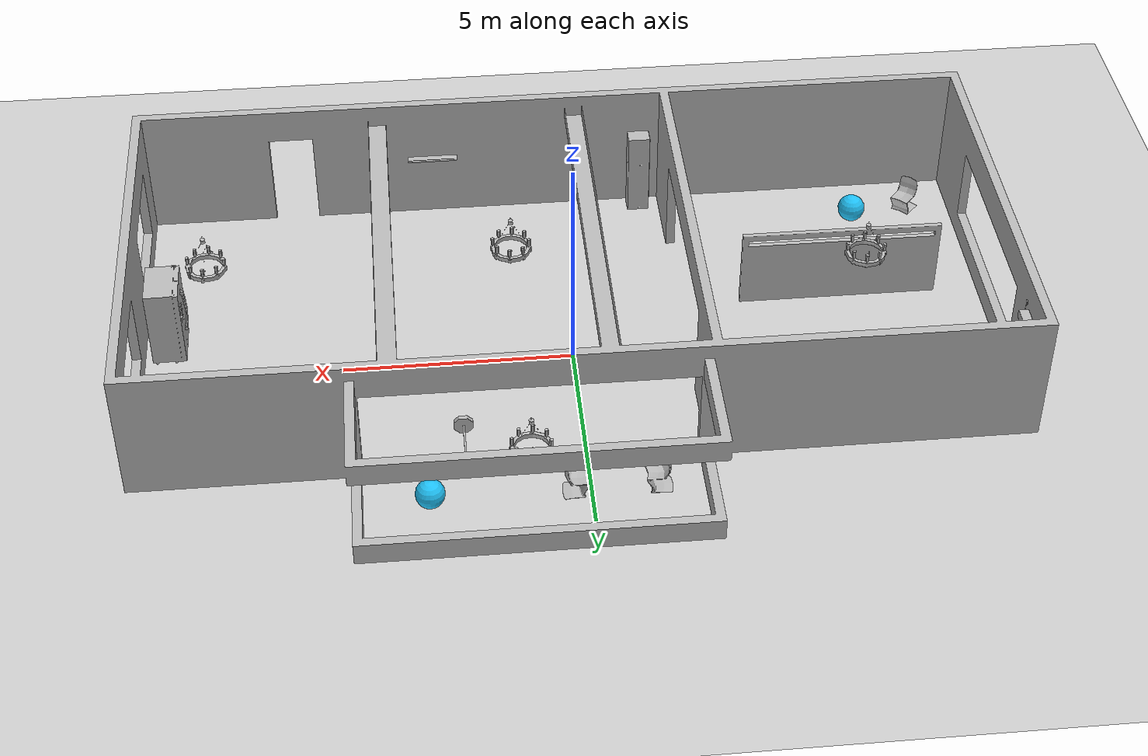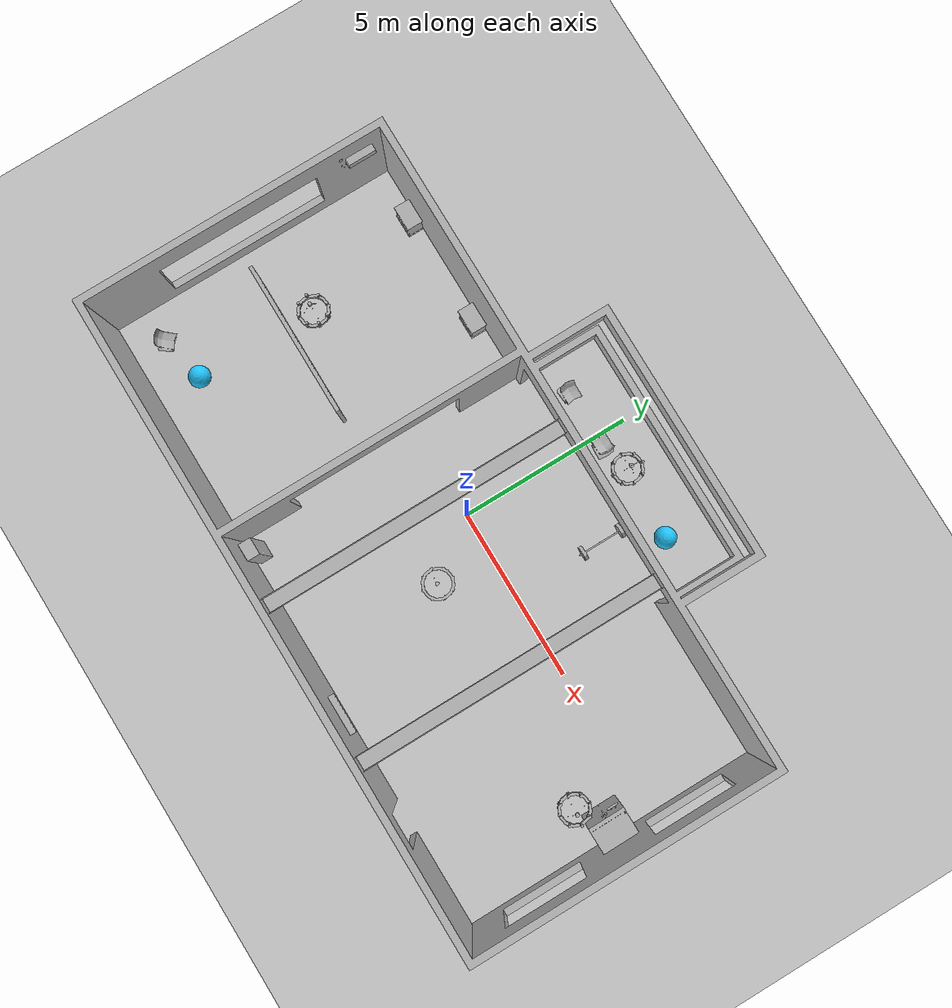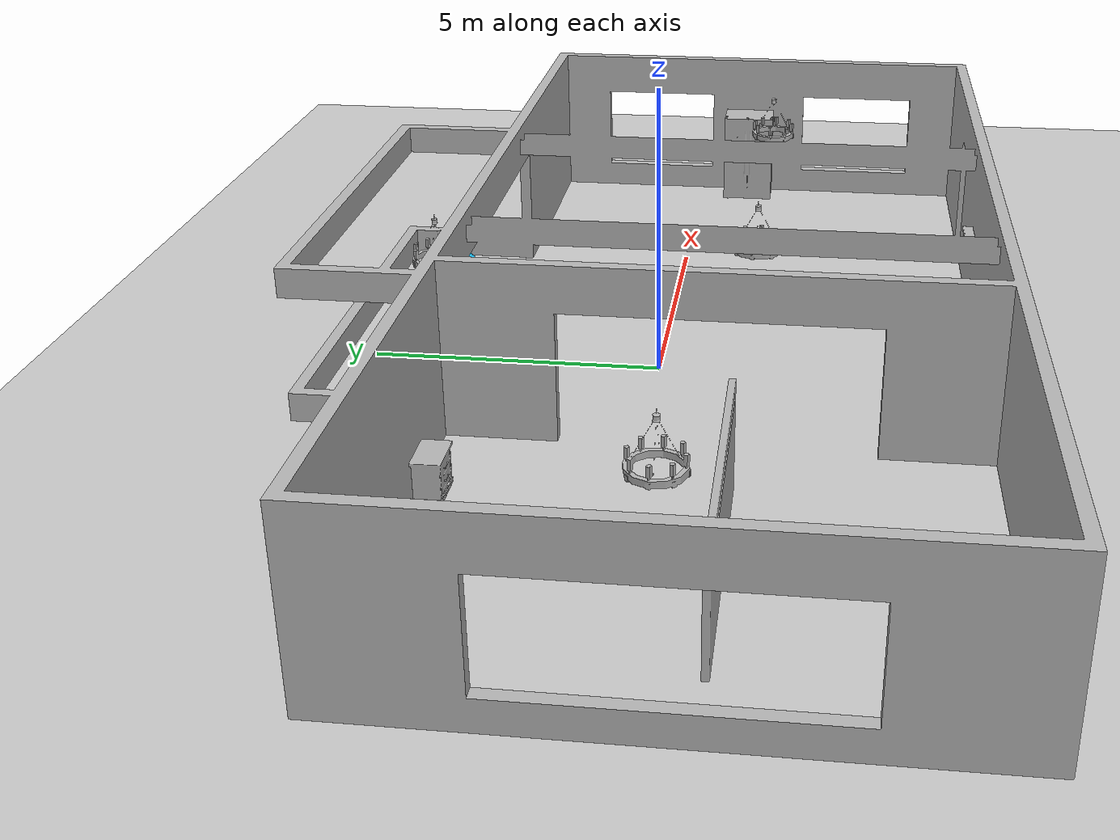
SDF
<sdf version="1.6">
 <world name="default">
  <gravity>0 0 -9.8</gravity>
  <magnetic_field>6e-06 2.3e-05 -4.2e-05</magnetic_field>
  <atmosphere type="adiabatic"/>
  <physics name="default_physics" default="0" type="ode">
   <max_step_size>0.001</max_step_size>
   <real_time_factor>1</real_time_factor>
   <real_time_update_rate>1000</real_time_update_rate>
  </physics>
  <scene>
   <ambient>0.4 0.4 0.4 1</ambient>
   <background>0.7 0.7 0.7 1</background>
   <shadows>false</shadows>
   <grid>false</grid>
   <origin_visual>false</origin_visual>
  </scene>
  <spherical_coordinates>
   <surface_model>EARTH_WGS84</surface_model>
   <latitude_deg>0</latitude_deg>
   <longitude_deg>0</longitude_deg>
   <elevation>0</elevation>
   <heading_deg>0</heading_deg>
  </spherical_coordinates>
  <include><uri>model://ground_plane</uri></include>
  <model name="AirconditionerA_01_001">
   <static>true</static>
   <include><uri>model://aws_robomaker_residential_AirconditionerA_01</uri></include>
   <pose>-9.199410 2.411230 2.084544 0 -0 0</pose>
  </model>
  <model name="AirconditionerB_01_001">
   <static>true</static>
   <include><uri>model://aws_robomaker_residential_AirconditionerB_01</uri></include>
   <pose>-2.004656 -5.226610 0.003485 0 -0 0</pose>
  </model>
  <model name="Ball_01_001">
   <static>true</static>
   <include><uri>model://aws_robomaker_residential_Ball_01</uri></include>
   <pose>3.295503 4.225674 0.318684 0 -0 0</pose>
  </model>
  <model name="Ball_01_003">
   <static>true</static>
   <include><uri>model://aws_robomaker_residential_Ball_01</uri></include>
   <pose>-6.945503 -4.22174 0.318684 0 -0 0</pose>
  </model>
  <model name="NightStand_01_001">
   <static>true</static>
   <include><uri>model://aws_robomaker_residential_NightStand_01</uri></include>
   <pose>-7.725510 2.860420 0.005258 -0.000002 0 0</pose>
  </model>
  <model name="NightStand_01_002">
   <static>true</static>
   <include><uri>model://aws_robomaker_residential_NightStand_01</uri></include>
   <pose>-4.407341 2.860420 0.005256 0 0.000002 0</pose>
  </model>
  <model name="Board_01_001">
   <static>true</static>
   <include><uri>model://aws_robomaker_residential_Board_01</uri></include>
   <pose>2.779073 -5.392703 1.538173 0 -0 0</pose>
  </model>
  <model name="ChairD_01_001">
   <static>true</static>
   <include><uri>model://aws_robomaker_residential_ChairD_01</uri></include>
   <pose>-1.380775 4.104456 0 0 -0 0</pose>
  </model>
  <model name="ChairD_01_002">
   <static>true</static>
   <include><uri>model://aws_robomaker_residential_ChairD_01</uri></include>
   <pose>0.325214 4.104456 0 0 -0 -3.138741</pose>
  </model>
  <model name="ChairD_01_003">
   <static>true</static>
   <include><uri>model://aws_robomaker_residential_ChairD_01</uri></include>
   <pose>-8.270775 -4.504456 0 0 -0 0.869673</pose>
  </model>
  <model name="Chandelier_01_001">
   <static>true</static>
   <include><uri>model://aws_robomaker_residential_Chandelier_01</uri></include>
   <pose>1.221061 4.155740 1.295000 0 -0 0</pose>
  </model>
  <model name="Chandelier_01_002">
   <static>true</static>
   <include><uri>model://aws_robomaker_residential_Chandelier_01</uri></include>
   <pose>-6.451061 -0.692040 1.810000 0 -0 0</pose>
  </model>
  <model name="Chandelier_01_003">
   <static>true</static>
   <include><uri>model://aws_robomaker_residential_Chandelier_01</uri></include>
   <pose>7.824061 -1.59 1.7510000 0 -0 0</pose>
  </model>
  <model name="Chandelier_01_004">
   <static>true</static>
   <include><uri>model://aws_robomaker_residential_Chandelier_01</uri></include>
   <pose>1.221061 -1.592040 1.7873000 0 -0 0</pose>
  </model>
  <model name="Dumbbell_01_001">
   <static>true</static>
   <include><uri>model://aws_robomaker_residential_Dumbbell_01</uri></include>
   <pose>2.512849 2.717787 0.002183 0 -0 0</pose>
  </model>
  <model name="HouseWallB_01_001">
   <static>true</static>
   <include><uri>model://aws_robomaker_residential_HouseWallB_01</uri></include>
  </model>
  <model name="Refrigerator_01_001">
   <static>true</static>
   <include><uri>model://aws_robomaker_residential_Refrigerator_01</uri></include>
   <pose>8.702731 -1.032031 0 0 -0 -1.563499</pose>
  </model>
  <model name="RoomWall_01_001">
   <static>true</static>
   <include><uri>model://aws_robomaker_residential_RoomWall_01</uri></include>
   <pose>-6.097550 -1.496180 0.028124 0 -0 0</pose>
  </model>
  <light name="LivingRoom_CeilingLight_0" type="point">
   <pose>1.194296 4.155759 2.2 0 -0 0</pose>
   <diffuse>0.5 0.5 0.5 1</diffuse>
   <specular>0.1 0.1 0.1 1</specular>
   <attenuation>
    <range>20</range>
    <constant>0.32</constant>
    <linear>0.01</linear>
    <quadratic>0.03</quadratic>
   </attenuation>
   <cast_shadows>0</cast_shadows>
   <direction>0 0 -1</direction>
  </light>
  <light name="LivingRoom_CeilingLight_1" type="point">
   <pose>1.194296 -1.589959 2.2 0 -0 0</pose>
   <diffuse>0.5 0.5 0.5 1</diffuse>
   <specular>0.1 0.1 0.1 1</specular>
   <attenuation>
    <range>20</range>
    <constant>0.05</constant>
    <linear>0.01</linear>
    <quadratic>0.09</quadratic>
   </attenuation>
   <cast_shadows>0</cast_shadows>
   <direction>0 0 -1</direction>
  </light>
  <light name="LivingRoom_WallLight_0" type="point">
   <pose>1.76956 -5.444370 2.2 0 -0 0</pose>
   <diffuse>0.24 0.24 0.24 1</diffuse>
   <specular>0.1 0.1 0.1 1</specular>
   <attenuation>
    <range>20</range>
    <constant>0.12</constant>
    <linear>0.00</linear>
    <quadratic>0.03</quadratic>
   </attenuation>
   <direction>0 0 -1</direction>
  </light>
  <light name="LivingRoom_WallLight_1" type="point">
   <pose>-0.13826 -5.444370 2.2 0 -0 0</pose>
   <diffuse>0.24 0.24 0.24 1</diffuse>
   <specular>0.1 0.1 0.1 1</specular>
   <attenuation>
    <range>20</range>
    <constant>0.12</constant>
    <linear>0.00</linear>
    <quadratic>0.03</quadratic>
   </attenuation>
   <direction>0 0 -1</direction>
  </light>
  <light name="TV_Light_0" type="point">
   <pose>0.8269 -4.939577 1.1 0 -0 0</pose>
   <diffuse>0.31372 0.31372 0.34901 1</diffuse>
   <specular>0.1 0.1 0.1 1</specular>
   <attenuation>
    <range>3</range>
    <constant>0.10</constant>
    <linear>0.04</linear>
    <quadratic>0.50</quadratic>
   </attenuation>
   <direction>0 0 -1</direction>
  </light>
  <light name="BedRoom_Portrait_Light_0" type="spot">
   <pose>-6.190379 -1.829697 1.5587 0.3 -0 0.0</pose>
   <diffuse>0.5 0.5 0.5 1</diffuse>
   <specular>0.1 0.1 0.1 1</specular>
   <attenuation>
    <range>20</range>
    <constant>0.50</constant>
    <linear>0.01</linear>
    <quadratic>0.00</quadratic>
   </attenuation>
   <spot><inner_angle>0.6</inner_angle><outer_angle>1.0</outer_angle><falloff>1.0</falloff></spot>
   <direction>0 0 -1</direction>
  </light>
  <light name="BedRoom_CeilingLight_0" type="point">
   <pose>-6.451061 -0.692040 2.000000 0 -0 0</pose>
   <diffuse>0.5 0.5 0.5 1</diffuse>
   <specular>0.1 0.1 0.1 1</specular>
   <attenuation>
    <range>20</range>
    <constant>0.32</constant>
    <linear>0.01</linear>
    <quadratic>0.03</quadratic>
   </attenuation>
   <cast_shadows>0</cast_shadows>
   <direction>0 0 -1</direction>
  </light>
  <light name="Kitchen_CeilingLight_0" type="point">
   <pose>7.8582 -1.5905 2.280000 0 -0 0</pose>
   <diffuse>0.5 0.5 0.5 1</diffuse>
   <specular>0.1 0.1 0.1 1</specular>
   <attenuation>
    <range>20</range>
    <constant>0.3</constant>
    <linear>0.01</linear>
    <quadratic>0.01</quadratic>
   </attenuation>
   <cast_shadows>0</cast_shadows>
   <direction>0 0 -1</direction>
  </light>
 </world>
</sdf>

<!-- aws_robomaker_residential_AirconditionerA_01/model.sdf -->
<sdf version="1.6">
  <model name="aws_robomaker_residential_AirconditionerA_01">
    <link name="link">
      <inertial>
        <mass>1</mass>
      </inertial>
      <collision name="collision">
        <pose>0.0 0.0 0.0 0 0 0 </pose>
        <geometry>
          <box>
            <size>0.2 0.8 0.52</size>
          </box>
        </geometry>
      </collision>
      <visual name="visual">
	    <geometry>
          <mesh>
            <uri>model://aws_robomaker_residential_AirconditionerA_01/meshes/aws_AirconditionerA_01_visual.DAE</uri>
          </mesh>
        </geometry>
      <meta> <layer> 1 </layer></meta>
</visual>
    </link>
	<static>1</static>
  </model>
</sdf>

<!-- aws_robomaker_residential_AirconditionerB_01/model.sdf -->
<sdf version="1.6">
  <model name="aws_robomaker_residential_AirconditionerB_01">
    <link name="link">
      <inertial>
        <mass>1</mass>
      </inertial>
      <collision name="collision">
        <pose>0.0 0.0 1.0 0 0 0 </pose>
        <geometry>
          <box>
            <size>0.5 0.4 2.0</size>
          </box>
        </geometry>
      </collision>
      <visual name="visual">
	    <geometry>
          <mesh>
            <uri>model://aws_robomaker_residential_AirconditionerB_01/meshes/aws_AirconditionerB_01_visual.DAE</uri>
          </mesh>
        </geometry>
      <meta> <layer> 1 </layer></meta>
</visual>
    </link>
  </model>
</sdf>

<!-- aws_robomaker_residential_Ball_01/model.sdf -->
<sdf version="1.6">
  <model name="aws_robomaker_residential_Ball_01">
    <link name="link">
      <inertial>
        <mass>0.12</mass>

          <inertia>
            <ixx>0.030752</ixx>
            <ixy>0</ixy>
            <ixz>0</ixz>
            <iyy>0.030752</iyy>
            <iyz>0</iyz>
            <izz>0.030752</izz>
          </inertia>
      </inertial>
      <collision name="collision">

        <geometry>

          <sphere>
            <radius>0.31 </radius>
          </sphere>

        </geometry>

        <surface>
          <friction>
            <ode>
              <mu>0.85</mu>
              <mu2>0.85</mu2>
            </ode>
          </friction>

          <contact>
            <ode>
              <kd>8500</kd>
              <max_vel>5.1</max_vel>
            </ode>
          </contact>
        </surface>

      </collision>
      <visual name="visual">
	    <geometry>

          <sphere>
            <radius>0.31 </radius>
          </sphere>
      </geometry>
          <material>
            <diffuse>0.12 0.76 0.97 1</diffuse>
            <ambient>0.03 0.21 0.27 1</ambient>
          </material>

      <meta> <layer> 1 </layer></meta>
</visual>
    </link>
  </model>
</sdf>

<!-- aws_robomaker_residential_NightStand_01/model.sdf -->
<sdf version="1.6">
  <model name="aws_robomaker_residential_NightStand_01">
    <link name="link">
      <inertial>
        <mass>13.6</mass>

        <inertia>
          <ixx>0.6165</ixx>
          <ixy>0</ixy>
          <ixz>0</ixz>
          <iyy>1.29664</iyy>
          <iyz>0</iyz>
          <izz>0.7706</izz>
        </inertia>

      </inertial>
      <collision name="collision">
        <pose>0.0 0.0 0.0 0 0 0 </pose>
        <geometry>
          <box>
            <size>0.73 0.43 1.4</size>
          </box>
        </geometry>
      </collision>
      <visual name="visual">
	    <geometry>
          <mesh>
            <uri>model://aws_robomaker_residential_NightStand_01/meshes/aws_NightStand_01_visual.DAE</uri>
          </mesh>
        </geometry>
      <meta> <layer> 1 </layer></meta>
</visual>
    </link>
    <static>1</static>
  </model>
</sdf>

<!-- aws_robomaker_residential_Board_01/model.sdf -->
<sdf version="1.6">
  <model name="aws_robomaker_residential_Board_01">
    <link name="link">
      <inertial>
        <mass>1</mass>
      </inertial>
      <collision name="collision">
        <pose>0.0 0.0 0.0 0 0 0 </pose>
        <geometry>
          <box>
            <size>1.15 0.2 0.07</size>
          </box>
        </geometry>
      </collision>
      <visual name="visual">
	    <geometry>
          <mesh>
            <uri>model://aws_robomaker_residential_Board_01/meshes/aws_Board_01_visual.DAE</uri>
          </mesh>
        </geometry>
      <meta> <layer> 2 </layer></meta>
</visual>
    </link>

    <static>1</static>
  </model>
</sdf>

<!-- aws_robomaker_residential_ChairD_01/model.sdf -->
<sdf version="1.6">
  <model name="aws_robomaker_residential_ChairD_01">
    <link name="link">
      <inertial>
        <mass>4.5</mass>
          <inertia>
            <ixy>0</ixy>
            <ixz>0</ixz>
            <iyz>0</iyz>
            <ixx>0.217</ixx>
            <iyy>0.217</iyy>
            <izz>0.067</izz>
          </inertia>
      </inertial>

      <collision name="collision">
        <pose>0.02 0.0 0.4 0 0 0 </pose>
        <geometry>
          <box>
            <size>0.5 0.5 0.8</size>
          </box>
        </geometry>
      </collision>
      <visual name="visual">
	    <geometry>
          <mesh>
            <uri>model://aws_robomaker_residential_ChairD_01/meshes/aws_ChairD_01_visual.DAE</uri>
          </mesh>
        </geometry>
      <meta> <layer> 1 </layer></meta>
</visual>
    </link>
  </model>
</sdf>

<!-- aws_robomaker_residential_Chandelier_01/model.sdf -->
<sdf version="1.6">
  <model name="aws_robomaker_residential_Chandelier_01">
    <link name="link">
      <inertial>
        <mass>1</mass>
      </inertial>
      <collision name="collision">
        <pose>0.0 0.0 0.13 0 0 0 </pose>
        <geometry>
          <box>
            <size>0.8 0.8 0.3</size>
          </box>
        </geometry>
      </collision>
      <visual name="visual">
	    <geometry>
          <mesh>
            <uri>model://aws_robomaker_residential_Chandelier_01/meshes/aws_Chandelier_01_visual.DAE</uri>
          </mesh>
        </geometry>
      <meta> <layer> 2 </layer></meta>
</visual>
    </link>
	<static>1</static>
  </model>
</sdf>

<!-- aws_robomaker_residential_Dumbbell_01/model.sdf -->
<sdf version="1.6">
  <model name="aws_robomaker_residential_Dumbbell_01">
    <link name="link">
      <inertial>
        <mass>80</mass>

        <inertia>
          <ixx>14.601</ixx>
          <ixy>0</ixy>
          <ixz>0</ixz>
          <iyy>0</iyy>
          <iyz>0</iyz>
          <izz>14.601</izz>
        </inertia>
      </inertial>
      <collision name="collision">
        <geometry>
          <mesh>
            <uri>model://models/aws_robomaker_residential_Dumbbell_01/meshes/aws_Dumbbell_01_collision.DAE</uri>
            <scale>1 1 1</scale>
          </mesh>
        </geometry>
        <max_contacts>10</max_contacts>
          <surface>
            <contact>
              <ode />
            </contact>
            <bounce />
            <friction>
              <torsional>
                <ode />
              </torsional>
              <ode />
            </friction>
          </surface>
      </collision>
      <visual name="visual">
	    <geometry>
          <mesh>
            <uri>model://models/aws_robomaker_residential_Dumbbell_01/meshes/aws_Dumbbell_01_visual.DAE</uri>
          </mesh>
        </geometry>
      <meta> <layer> 1 </layer></meta>
</visual>
    </link>
    <static>1</static>
  </model>
</sdf>

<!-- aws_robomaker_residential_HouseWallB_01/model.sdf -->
<sdf version="1.6">
  <model name="aws_robomaker_residential_HouseWallB_01">
    <link name="link">
      <inertial>
        <mass>1</mass>
      </inertial>
      <collision name="collision">
        <pose>0.0 -5.6 1.5 0 0 0 </pose>
        <geometry>
          <box>
            <size>19.0 0.3 3.0</size>
          </box>
        </geometry>
      </collision>
      <collision name="collision2">
        <pose>1.1 5.6 1.5 0 0 0 </pose>
        <geometry>
          <box>
            <size>7.5 0.3 3.0</size>
          </box>
        </geometry>
      </collision>
      <collision name="collision5">
        <pose>7.1 3.2 1.5 0 0 0 </pose>
        <geometry>
          <box>
            <size>4.9 0.3 3.0</size>
          </box>
        </geometry>
      </collision>
      <collision name="collision6">
        <pose>-5.85 3.2 1.5 0 0 0 </pose>
        <geometry>
          <box>
            <size>7.0 0.3 3.0</size>
          </box>
        </geometry>
      </collision>
      <collision name="collision3">
        <pose>9.4 -1.2 1.5 0 0 0 </pose>
        <geometry>
          <box>
            <size>0.3 8.8 3.0</size>
          </box>
        </geometry>
      </collision>
      <collision name="collision4">
        <pose>-9.4 -1.2 1.5 0 0 0 </pose>
        <geometry>
          <box>
            <size>0.3 8.8 3.0</size>
          </box>
        </geometry>
      </collision>
      <collision name="collision7">
        <pose>-2.6 -4.7 1.5 0 0 0 </pose>
        <geometry>
          <box>
            <size>0.3 2.0 3.0</size>
          </box>
        </geometry>
      </collision>
      <collision name="collision8">
        <pose>-2.55 3.5 1.5 0 0 0 </pose>
        <geometry>
          <box>
            <size>0.3 4.4 3.0</size>
          </box>
        </geometry>
      </collision>
      <collision name="collision9">
        <pose>4.8 4.3 1.5 0 0 0 </pose>
        <geometry>
          <box>
            <size>0.3 2.5 3.0</size>
          </box>
        </geometry>
      </collision>
      <visual name="visual">
	    <geometry>
          <mesh>
            <uri>model://aws_robomaker_residential_HouseWallB_01/meshes/aws_HouseWallB_01_visual.DAE</uri>
          </mesh>
        </geometry>
      <meta> <layer> 2 </layer></meta>
</visual>
    </link>
<static>1</static>
  </model>
</sdf>

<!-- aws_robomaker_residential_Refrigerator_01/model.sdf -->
<sdf version="1.6">
  <model name="aws_robomaker_residential_Refrigerator_01">
    <link name="link">
      <inertial>
        <mass>1</mass>
      </inertial>
      <collision name="collision">
        <pose>0.0 0.05 1.0 0 0 0 </pose>
        <geometry>
          <box>
            <size>1.0 0.716 2.0</size>
          </box>
        </geometry>
      </collision>
      <visual name="visual">
	    <geometry>
          <mesh>
            <uri>model://aws_robomaker_residential_Refrigerator_01/meshes/aws_Refrigerator_01_visual.DAE</uri>
          </mesh>
        </geometry>
      <meta> <layer> 1 </layer></meta>
</visual>
    </link>
    <static>1</static>
  </model>
</sdf>

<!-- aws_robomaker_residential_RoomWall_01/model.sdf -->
<sdf version="1.6">
  <model name="aws_robomaker_residential_RoomWall_01">
    <link name="link">
      <inertial>
        <mass>100</mass>
      </inertial>
      <collision name="collision">
        <pose>0.0 0.0 0.5 0 0 0 </pose>
        <geometry>
          <box>
            <size>4.4 0.1 2.6</size>
          </box>
        </geometry>
      </collision>
      <visual name="visual">
	    <geometry>
          <mesh>
            <uri>model://aws_robomaker_residential_RoomWall_01/meshes/aws_RoomWall_01_visual.DAE</uri>
          </mesh>
        </geometry>
      <meta> <layer> 2 </layer></meta>
</visual>
    </link>
  <static>1</static>
  </model>
</sdf>
